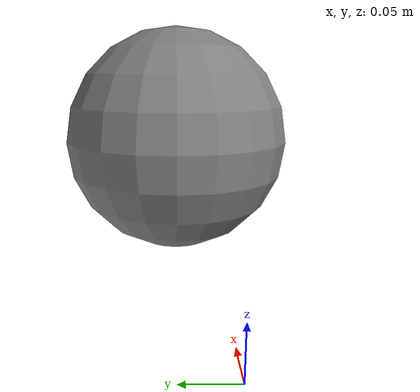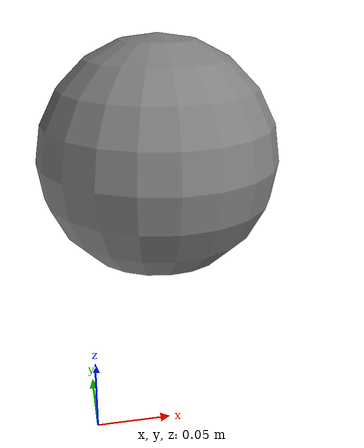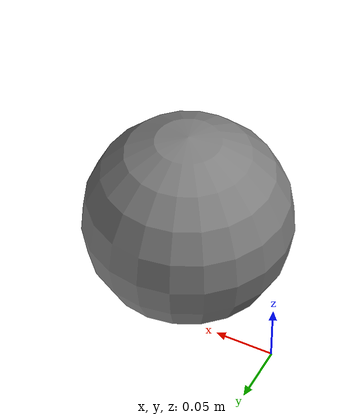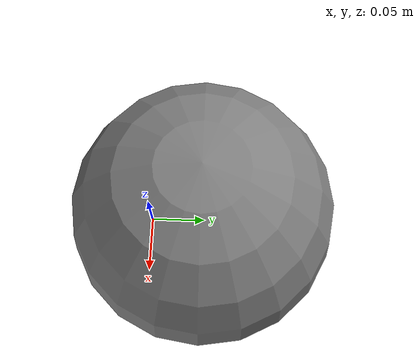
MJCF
<mujoco>
  <option gravity="1.5 0 -9.81" timestep="0.001"/>
  <worldbody>
    <body name="arm" pos="0.05 0.05 0.344">
      <joint name="j" type="hinge" axis="0 1 0"/>
      <geom type="sphere" pos="0 0 -0.17" size="0.08" mass="0.2"/>
    </body>
  </worldbody>
  <actuator><motor joint="j" gear="1"/></actuator>
</mujoco>
